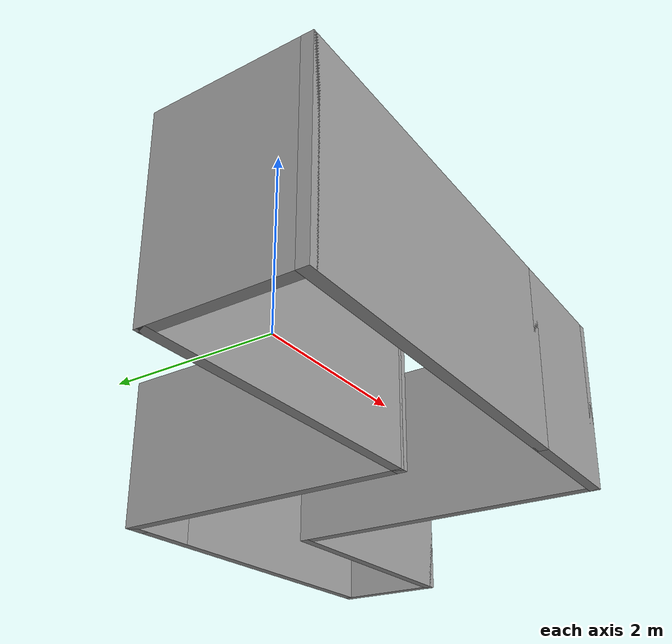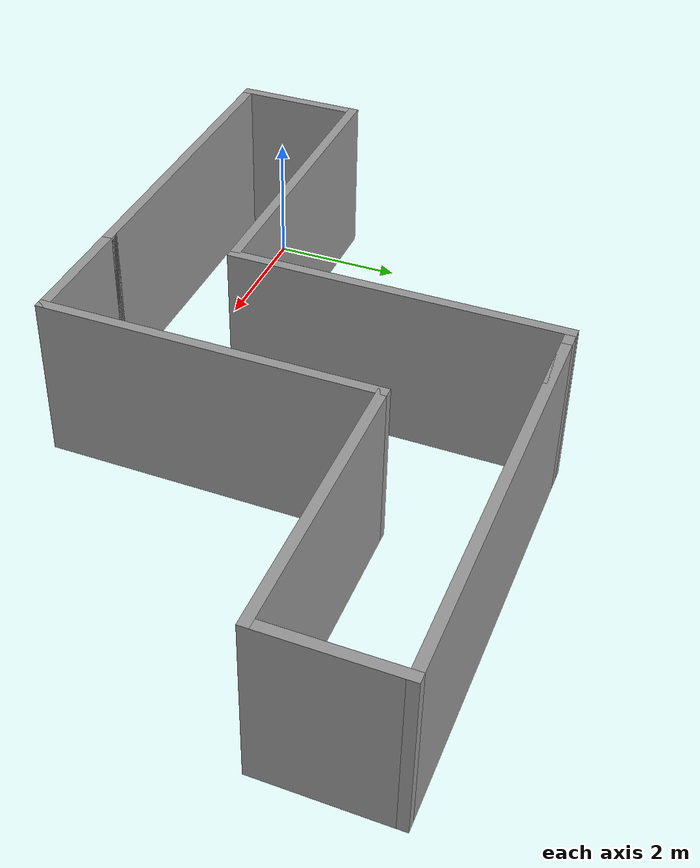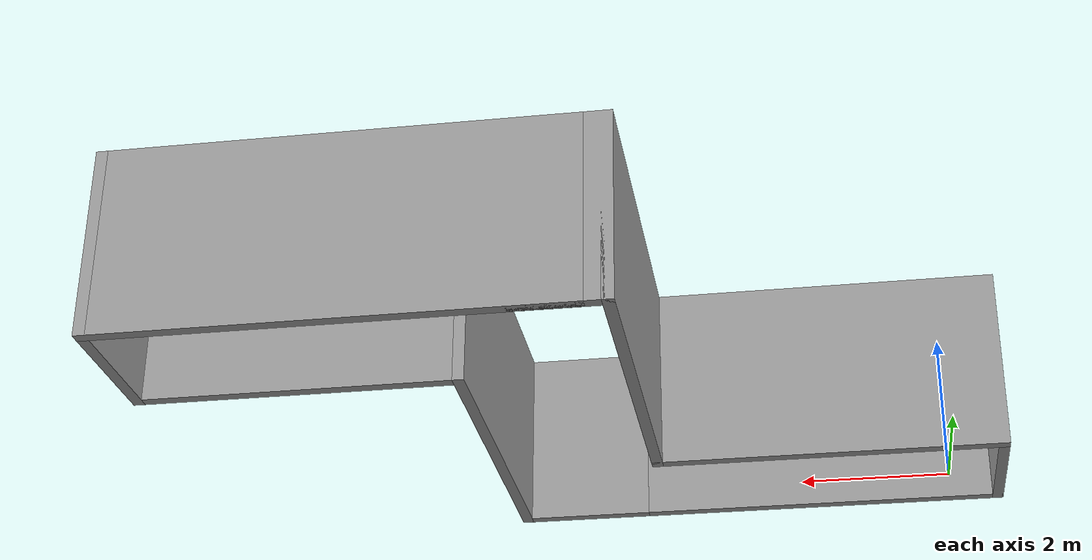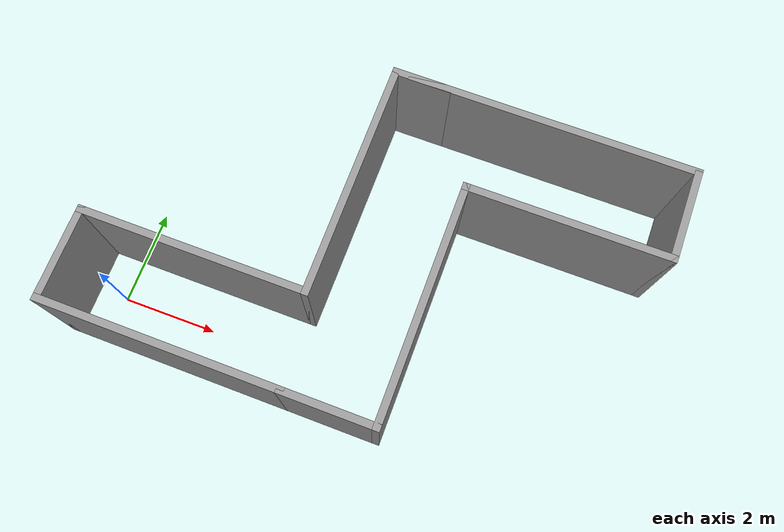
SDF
<?xml version='1.0'?>
<sdf version='1.6'>
  <model name='maze_1'>
    <pose frame=''>4.70174 2.44391 0 0 -0 0</pose>
    <link name='Wall_16'>
      <collision name='Wall_16_Collision'>
        <geometry>
          <box>
            <size>5 0.15 2.5</size>
          </box>
        </geometry>
        <pose frame=''>0 0 1.25 0 -0 0</pose>
      </collision>
      <visual name='Wall_16_Visual'>
        <pose frame=''>0 0 1.25 0 -0 0</pose>
        <geometry>
          <box>
            <size>5 0.15 2.5</size>
          </box>
        </geometry>
        <material>
          <script>
            <uri>file://media/materials/scripts/gazebo.material</uri>
            <name>Gazebo/Grey</name>
          </script>
          <ambient>1 1 1 1</ambient>
        </material>
      </visual>
      <pose frame=''>-2.975 -3.35 0 0 -0 0</pose>
    </link>
    <link name='Wall_17'>
      <collision name='Wall_17_Collision'>
        <geometry>
          <box>
            <size>2 0.15 2.5</size>
          </box>
        </geometry>
        <pose frame=''>0 0 1.25 0 -0 0</pose>
      </collision>
      <visual name='Wall_17_Visual'>
        <pose frame=''>0 0 1.25 0 -0 0</pose>
        <geometry>
          <box>
            <size>2 0.15 2.5</size>
          </box>
        </geometry>
        <material>
          <script>
            <uri>file://media/materials/scripts/gazebo.material</uri>
            <name>Gazebo/Grey</name>
          </script>
          <ambient>1 1 1 1</ambient>
        </material>
      </visual>
      <pose frame=''>0.375 -3.35 0 0 -0 0</pose>
    </link>
    <link name='Wall_18'>
      <collision name='Wall_18_Collision'>
        <geometry>
          <box>
            <size>5 0.15 2.5</size>
          </box>
        </geometry>
        <pose frame=''>0 0 1.25 0 -0 0</pose>
      </collision>
      <visual name='Wall_18_Visual'>
        <pose frame=''>0 0 1.25 0 -0 0</pose>
        <geometry>
          <box>
            <size>5 0.15 2.5</size>
          </box>
        </geometry>
        <material>
          <script>
            <uri>file://media/materials/scripts/gazebo.material</uri>
            <name>Gazebo/Grey</name>
          </script>
          <ambient>1 1 1 1</ambient>
        </material>
      </visual>
      <pose frame=''>1.3 -0.925 0 0 -0 1.5708</pose>
    </link>
    <link name='Wall_19'>
      <collision name='Wall_19_Collision'>
        <geometry>
          <box>
            <size>4.25 0.15 2.5</size>
          </box>
        </geometry>
        <pose frame=''>0 0 1.25 0 -0 0</pose>
      </collision>
      <visual name='Wall_19_Visual'>
        <pose frame=''>0 0 1.25 0 -0 0</pose>
        <geometry>
          <box>
            <size>4.25 0.15 2.5</size>
          </box>
        </geometry>
        <material>
          <script>
            <uri>file://media/materials/scripts/gazebo.material</uri>
            <name>Gazebo/Grey</name>
          </script>
          <ambient>1 1 1 1</ambient>
        </material>
      </visual>
      <pose frame=''>3.35 1.5 0 0 -0 0</pose>
    </link>
    <link name='Wall_29'>
      <collision name='Wall_29_Collision'>
        <geometry>
          <box>
            <size>2 0.15 2.5</size>
          </box>
        </geometry>
        <pose frame=''>0 0 1.25 0 -0 0</pose>
      </collision>
      <visual name='Wall_29_Visual'>
        <pose frame=''>0 0 1.25 0 -0 0</pose>
        <geometry>
          <box>
            <size>2 0.15 2.5</size>
          </box>
        </geometry>
        <material>
          <script>
            <uri>file://media/materials/scripts/gazebo.material</uri>
            <name>Gazebo/Grey</name>
          </script>
          <ambient>1 1 1 1</ambient>
        </material>
      </visual>
      <pose frame=''>5.4 2.425 0 0 -0 1.5708</pose>
    </link>
    <link name='Wall_30'>
      <collision name='Wall_30_Collision'>
        <geometry>
          <box>
            <size>6 0.15 2.5</size>
          </box>
        </geometry>
        <pose frame=''>0 0 1.25 0 -0 0</pose>
      </collision>
      <visual name='Wall_30_Visual'>
        <pose frame=''>0 0 1.25 0 -0 0</pose>
        <geometry>
          <box>
            <size>6 0.15 2.5</size>
          </box>
        </geometry>
        <material>
          <script>
            <uri>file://media/materials/scripts/gazebo.material</uri>
            <name>Gazebo/Grey</name>
          </script>
          <ambient>1 1 1 1</ambient>
        </material>
      </visual>
      <pose frame=''>2.475 3.35 0 0 -0 3.14159</pose>
    </link>
    <link name='Wall_33'>
      <collision name='Wall_33_Collision'>
        <geometry>
          <box>
            <size>2 0.15 2.5</size>
          </box>
        </geometry>
        <pose frame=''>0 0 1.25 0 -0 0</pose>
      </collision>
      <visual name='Wall_33_Visual'>
        <pose frame=''>0 0 1.25 0 -0 0</pose>
        <geometry>
          <box>
            <size>2 0.15 2.5</size>
          </box>
        </geometry>
        <material>
          <script>
            <uri>file://media/materials/scripts/gazebo.material</uri>
            <name>Gazebo/Grey</name>
          </script>
          <ambient>1 1 1 1</ambient>
        </material>
      </visual>
      <pose frame=''>-5.4 -2.425 0 0 -0 1.5708</pose>
    </link>
    <link name='Wall_35'>
      <collision name='Wall_35_Collision'>
        <geometry>
          <box>
            <size>4.75 0.15 2.5</size>
          </box>
        </geometry>
        <pose frame=''>0 0 1.25 0 -0 0</pose>
      </collision>
      <visual name='Wall_35_Visual'>
        <pose frame=''>0 0 1.25 0 -0 0</pose>
        <geometry>
          <box>
            <size>4.75 0.15 2.5</size>
          </box>
        </geometry>
        <material>
          <script>
            <uri>file://media/materials/scripts/gazebo.material</uri>
            <name>Gazebo/Grey</name>
          </script>
          <ambient>1 1 1 1</ambient>
        </material>
      </visual>
      <pose frame=''>-3.1 -1.5 0 0 -0 0</pose>
    </link>
    <link name='Wall_36'>
      <collision name='Wall_36_Collision'>
        <geometry>
          <box>
            <size>5 0.15 2.5</size>
          </box>
        </geometry>
        <pose frame=''>0 0 1.25 0 -0 0</pose>
      </collision>
      <visual name='Wall_36_Visual'>
        <pose frame=''>0 0 1.25 0 -0 0</pose>
        <geometry>
          <box>
            <size>5 0.15 2.5</size>
          </box>
        </geometry>
        <material>
          <script>
            <uri>file://media/materials/scripts/gazebo.material</uri>
            <name>Gazebo/Grey</name>
          </script>
          <ambient>1 1 1 1</ambient>
        </material>
      </visual>
      <pose frame=''>-0.8 0.925 0 0 -0 1.5708</pose>
    </link>
    <link name='Wall_37'>
      <collision name='Wall_37_Collision'>
        <geometry>
          <box>
            <size>1.25 0.15 2.5</size>
          </box>
        </geometry>
        <pose frame=''>0 0 1.25 0 -0 0</pose>
      </collision>
      <visual name='Wall_37_Visual'>
        <pose frame=''>0 0 1.25 0 -0 0</pose>
        <geometry>
          <box>
            <size>1.25 0.15 2.5</size>
          </box>
        </geometry>
        <material>
          <script>
            <uri>file://media/materials/scripts/gazebo.material</uri>
            <name>Gazebo/Grey</name>
          </script>
          <ambient>1 1 1 1</ambient>
        </material>
      </visual>
      <pose frame=''>-0.25 3.35 0 0 -0 0</pose>
    </link>
    <static>1</static>
  </model>
</sdf>
